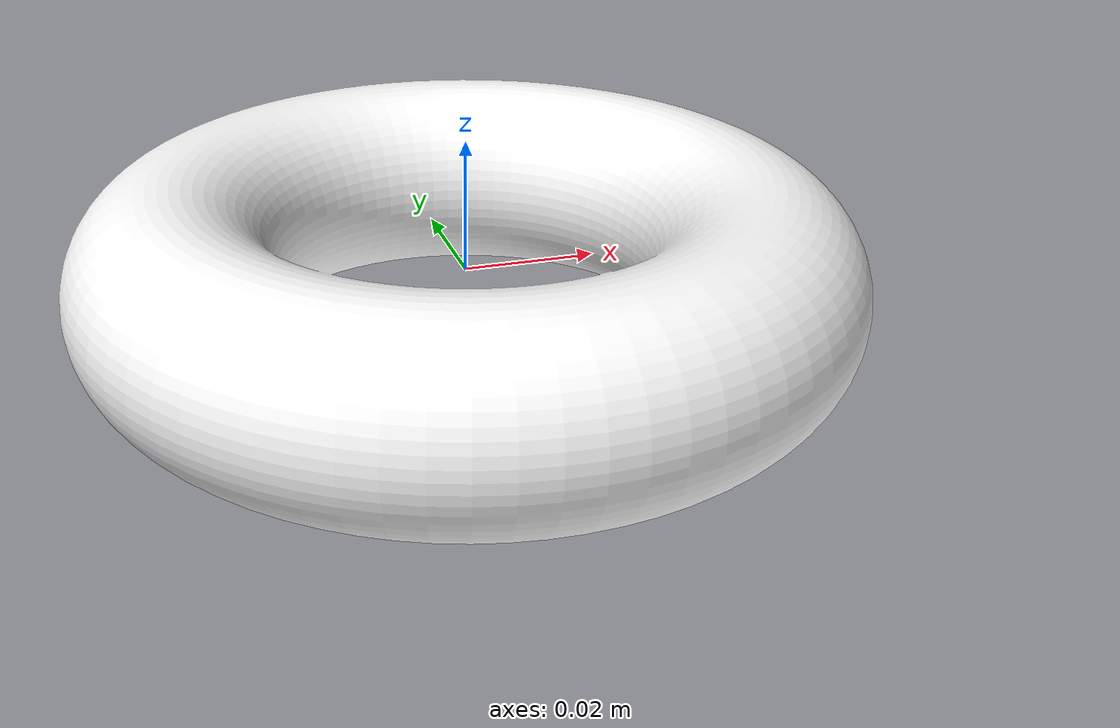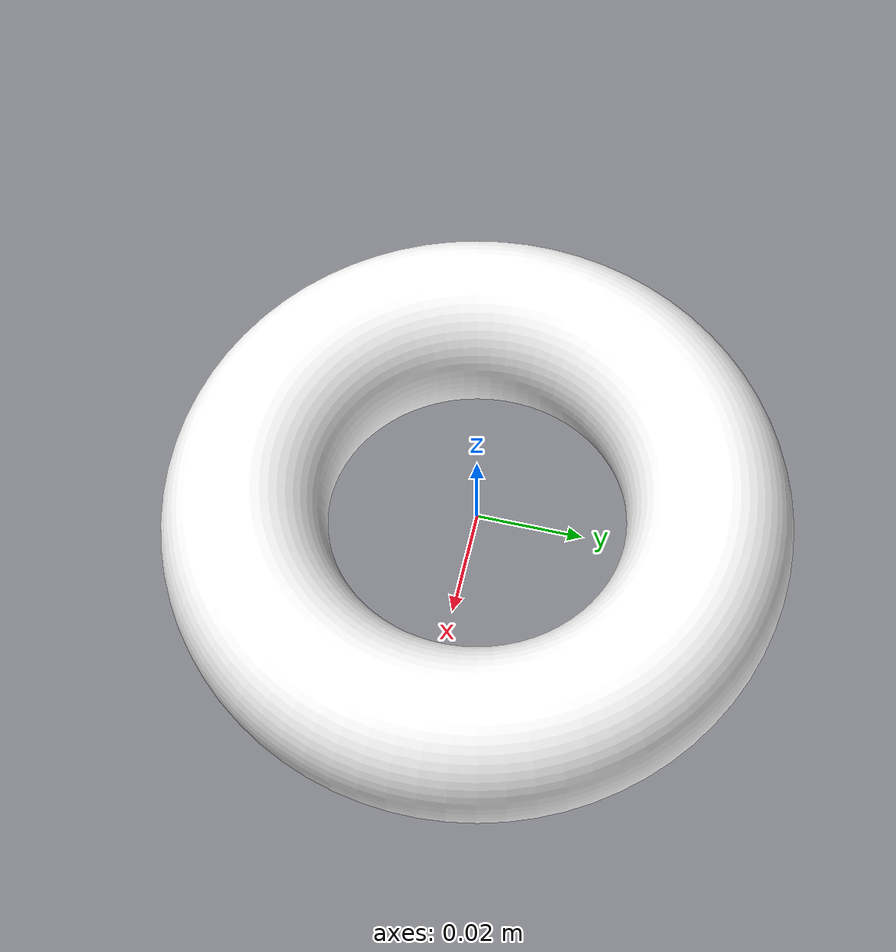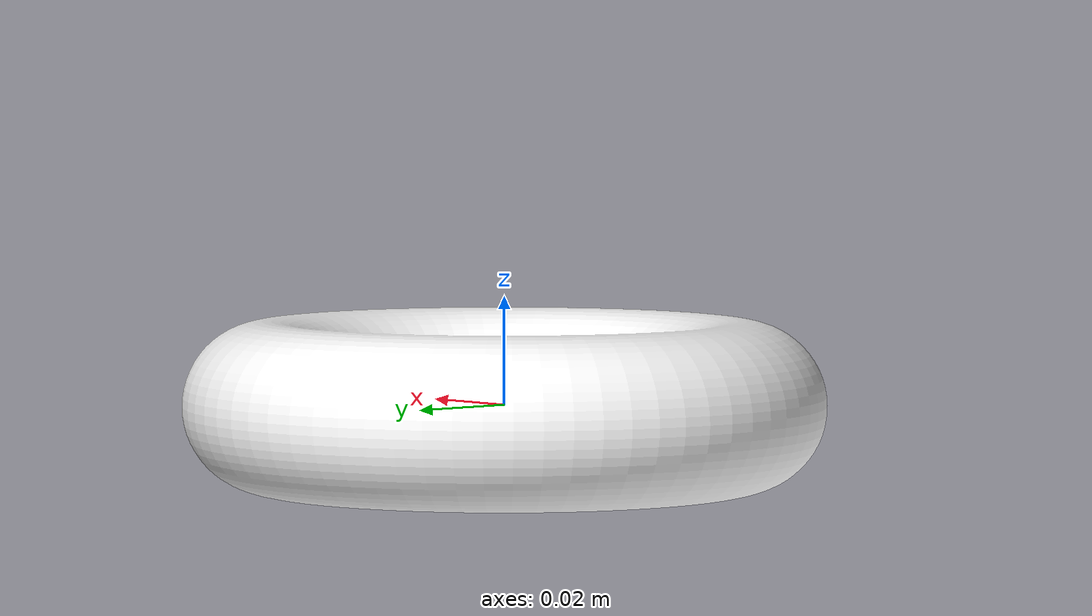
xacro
<robot xmlns:xacro="http://www.ros.org/wiki/xacro" name="ring">

    <xacro:arg name="ring_color" default="white"/>

    <xacro:property name="white" value="1.0 1.0 1.0 1.0" />
    <xacro:property name="blue" value="0.0 0.75 0.86 1.0" />
    <xacro:property name="green" value="0.65 0.83 0.02 1.0" />
    <xacro:property name="yellow" value="0.94 0.79 0.16 1.0" />
    <xacro:property name="orange" value="0.97 0.48 0.0 1.0" />
    <xacro:property name="red" value="0.88 0.0 0.06 1.0" />

    <xacro:property name="white_scale" value="1.0 1.0 1.0" />
    <xacro:property name="blue_scale" value="1.0 1.0 1.0" />
    <xacro:property name="green_scale" value="0.93 1.0 0.93" />
    <xacro:property name="yellow_scale" value="0.86 1.0 0.86" />
    <xacro:property name="orange_scale" value="0.8 1.0 0.8" />
    <xacro:property name="red_scale" value="0.75 1.0 0.75" />

    <!-- Base Link -->
    <link name="center">
        <visual>
            <origin xyz="0.0 0.0 0.0" rpy="${pi/2} 0.0 0.0" />
            <geometry>
                <mesh filename="file://$(find teleop_visualization)/ring.stl" scale="${$(arg ring_color)_scale}" />
            </geometry>
            <material name="Cyan">
                <color rgba="${$(arg ring_color)}"/>
            </material>
        </visual>

        <collision>
            <origin xyz="0.0 0.0 0.0" rpy="0.0 0.0 0.0" />
            <geometry>
                <cylinder radius="0.05" length="0.02"/>
            </geometry>
        </collision>
    </link>

</robot>
